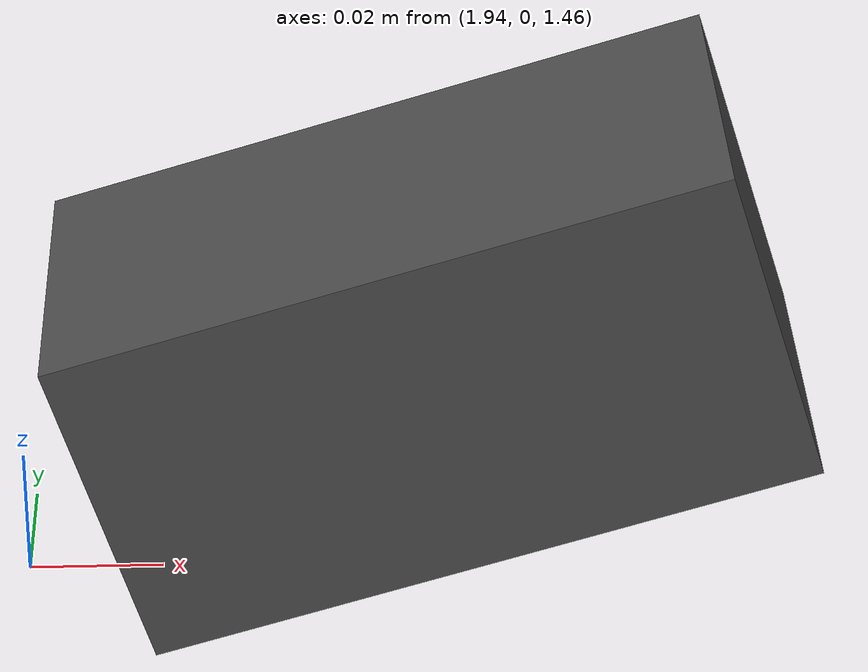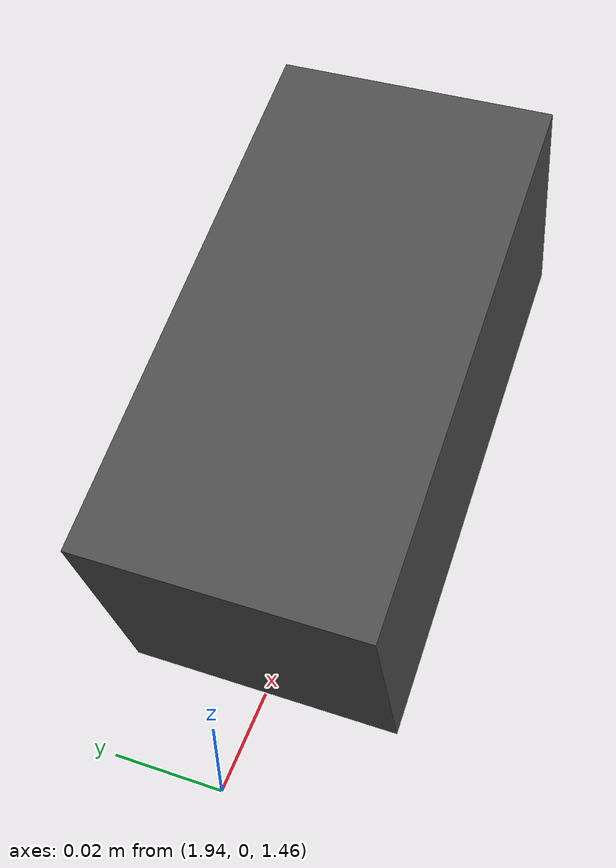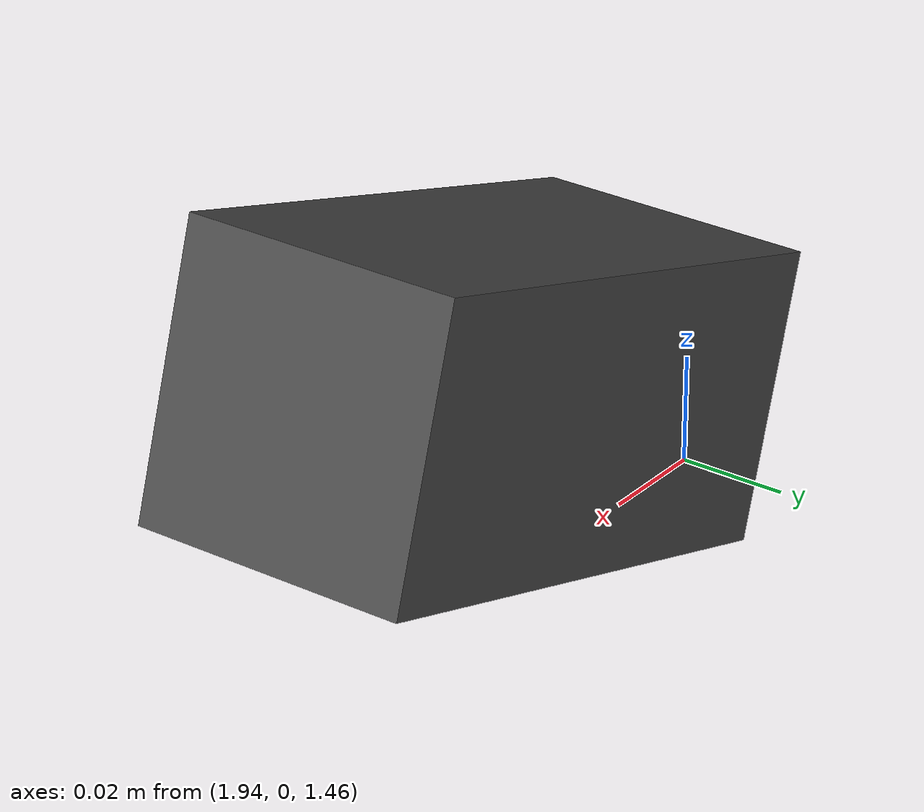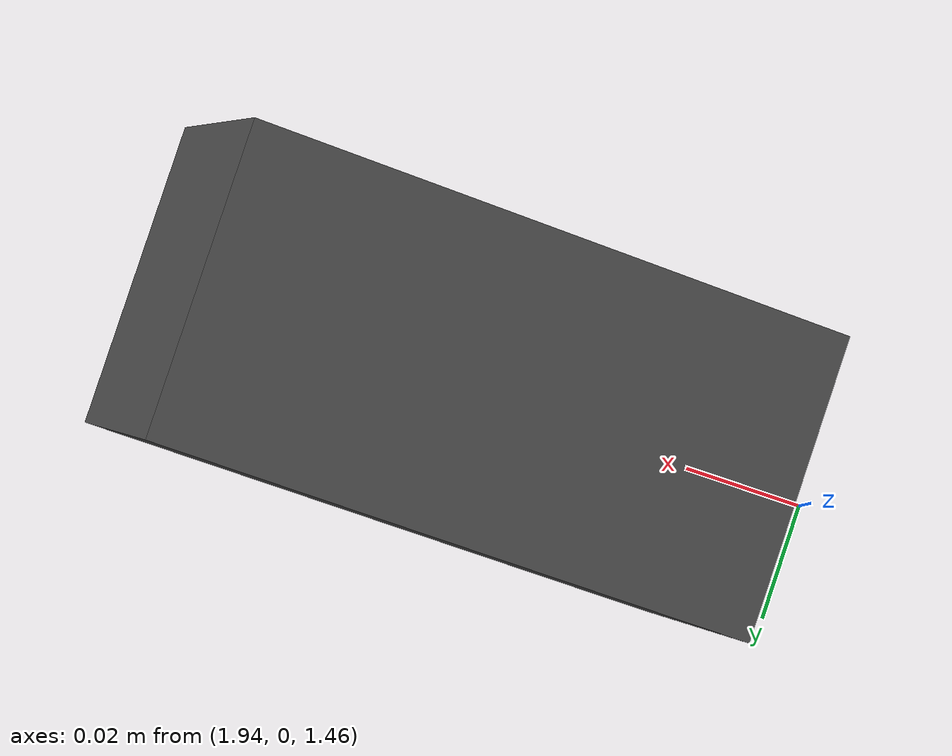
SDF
<?xml version="1.0"?>
<sdf version="1.8">
  <world name="lab">
    <!-- Physics -->
    <physics name="1ms" type="ignored">
      <max_step_size>0.001</max_step_size>
      <real_time_factor>1.0</real_time_factor>
    </physics>

    <!-- Plugins -->
    <plugin filename="gz-sim-physics-system" name="gz::sim::systems::Physics"/>
    <plugin filename="gz-sim-user-commands-system" name="gz::sim::systems::UserCommands"/>
    <plugin filename="gz-sim-scene-broadcaster-system" name="gz::sim::systems::SceneBroadcaster"/>

    <!-- Lighting -->
    <light type="directional" name="sun">
      <cast_shadows>true</cast_shadows>
      <pose>0 0 10 0 0 0</pose>
      <diffuse>0.8 0.8 0.8 1</diffuse>
      <specular>0.2 0.2 0.2 1</specular>
      <attenuation>
        <range>1000</range>
        <constant>0.9</constant>
        <linear>0.01</linear>
        <quadratic>0.001</quadratic>
      </attenuation>
      <direction>-0.5 0.1 -0.9</direction>
    </light>

    <!-- Ground plane -->
    <model name="ground_plane">
      <static>true</static>
      <link name="link">
        <collision name="collision">
          <geometry>
            <plane>
              <normal>0 0 1</normal>
              <size>100 100</size>
            </plane>
          </geometry>
        </collision>
        <visual name="visual">
          <geometry>
            <plane>
              <normal>0 0 1</normal>
              <size>100 100</size>
            </plane>
          </geometry>
          <material>
            <ambient>0.8 0.8 0.8 1</ambient>
            <diffuse>0.8 0.8 0.8 1</diffuse>
            <specular>0.8 0.8 0.8 1</specular>
          </material>
        </visual>
      </link>
    </model>

    <!-- Sensors plugin for camera -->
    <plugin filename="gz-sim-sensors-system" name="gz::sim::systems::Sensors">
      <render_engine>ogre2</render_engine>
    </plugin>

    <!-- Moving Camera Model -->
    <model name="moving_camera">
      <pose>2 0 1.5 0 0.3 3.14159</pose>
      <link name="camera_link">
        <pose>0 0 0 0 0 0</pose>
        <inertial>
          <mass>0.1</mass>
          <inertia>
            <ixx>0.001</ixx>
            <iyy>0.001</iyy>
            <izz>0.001</izz>
          </inertia>
        </inertial>

        <visual name="visual">
          <geometry>
            <box>
              <size>0.1 0.05 0.05</size>
            </box>
          </geometry>
          <material>
            <ambient>0.2 0.2 0.2 1</ambient>
            <diffuse>0.3 0.3 0.3 1</diffuse>
          </material>
        </visual>

        <sensor name="camera" type="camera">
          <camera>
            <horizontal_fov>1.57</horizontal_fov>
            <image>
              <width>640</width>
              <height>480</height>
            </image>
            <clip>
              <near>0.1</near>
              <far>100</far>
            </clip>
          </camera>
          <always_on>1</always_on>
          <update_rate>30</update_rate>
          <visualize>true</visualize>
          <topic>camera</topic>
        </sensor>
      </link>
    </model>
  </world>
</sdf>
